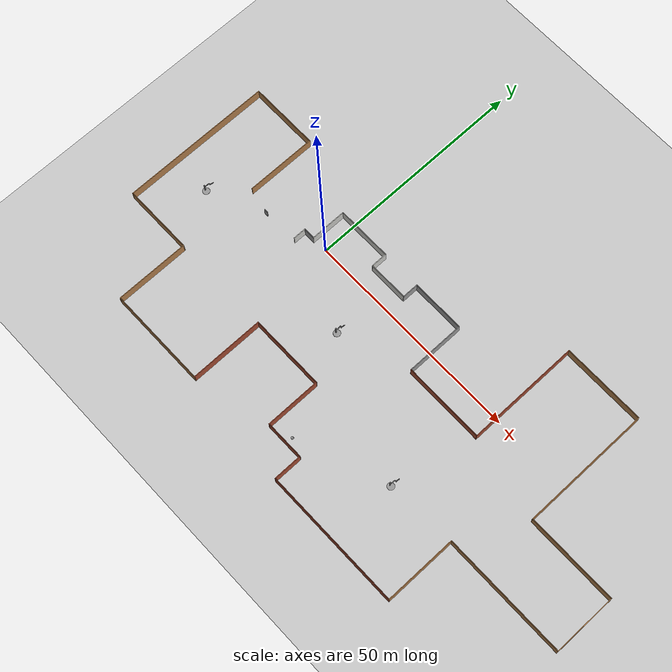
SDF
<sdf version="1.6">
 <world name="default">
  <light name="sun" type="directional">
   <pose>0 0 10 0 -0 0</pose>
   <diffuse>0.8 0.8 0.8 1</diffuse>
   <specular>0.2 0.2 0.2 1</specular>
   <attenuation>
    <range>1000</range>
    <constant>0.9</constant>
    <linear>0.01</linear>
    <quadratic>0.001</quadratic>
   </attenuation>
   <direction>-0.5 0.1 -0.9</direction>
  </light>
  <model name="ground_plane">
   <static>1</static>
   <link name="link">
    <collision name="collision">
     <geometry><plane><normal>0 0 1</normal><size>100 100</size></plane></geometry>
     <surface><friction><ode><mu>100</mu><mu2>50</mu2></ode></friction></surface>
    </collision>
    <visual name="visual">
     <cast_shadows>0</cast_shadows>
     <geometry><plane><normal>0 0 1</normal><size>100 100</size></plane></geometry>
     <material>
      <script><uri>file://media/materials/scripts/gazebo.material</uri><name>Gazebo/Grey</name></script>
     </material>
    </visual>
   </link>
  </model>
  <gravity>0 0 -9.8</gravity>
  <magnetic_field>6e-06 2.3e-05 -4.2e-05</magnetic_field>
  <atmosphere type="adiabatic"/>
  <physics name="default_physics" default="0" type="ode">
   <max_step_size>0.001</max_step_size>
   <real_time_factor>1</real_time_factor>
   <real_time_update_rate>1000</real_time_update_rate>
  </physics>
  <scene><ambient>0.4 0.4 0.4 1</ambient><background>0.7 0.7 0.7 1</background><shadows>1</shadows></scene>
  <spherical_coordinates>
   <surface_model>EARTH_WGS84</surface_model>
   <latitude_deg>0</latitude_deg>
   <longitude_deg>0</longitude_deg>
   <elevation>0</elevation>
   <heading_deg>0</heading_deg>
  </spherical_coordinates>
  <model name="World_Chase"><pose>7.40833 -2.62731 0 0 -0 0</pose><static>1</static></model>
  <model name="Untitled">
   <model name="white_ball">
    <link name="link_0">
     <inertial>
      <mass>1</mass>
      <inertia><ixx>0.1</ixx><ixy>0</ixy><ixz>0</ixz><iyy>0.1</iyy><iyz>0</iyz><izz>0.1</izz></inertia>
     </inertial>
     <visual name="visual">
      <geometry><sphere><radius>0.3</radius></sphere></geometry>
      <material>
       <lighting>1</lighting>
       <script><uri>file://media/materials/scripts/gazebo.material</uri><name>Gazebo/Grey</name></script>
       <shader type="pixel"><normal_map>__default__</normal_map></shader>
       <ambient>1 1 1 1</ambient>
       <diffuse>1 1 1 1</diffuse>
       <specular>1 1 1 1</specular>
       <emissive>1 1 1 1</emissive>
      </material>
     </visual>
     <collision name="collision">
      <geometry><sphere><radius>0.3</radius></sphere></geometry>
      <surface>
       <friction>
        <ode><mu>1</mu><mu2>1</mu2><fdir1>0 0 0</fdir1><slip1>0</slip1><slip2>0</slip2></ode>
        <torsional>
         <coefficient>1</coefficient>
         <patch_radius>0</patch_radius>
         <surface_radius>0</surface_radius>
         <use_patch_radius>1</use_patch_radius>
         <ode><slip>0</slip></ode>
        </torsional>
       </friction>
       <bounce><restitution_coefficient>0</restitution_coefficient><threshold>1e+06</threshold></bounce>
       <contact>
        <collide_without_contact>0</collide_without_contact>
        <collide_without_contact_bitmask>1</collide_without_contact_bitmask>
        <collide_bitmask>1</collide_bitmask>
        <ode>
         <soft_cfm>0</soft_cfm>
         <soft_erp>0.2</soft_erp>
         <kp>1e+13</kp>
         <kd>1</kd>
         <max_vel>0.01</max_vel>
         <min_depth>0</min_depth>
        </ode>
        <bullet>
         <split_impulse>1</split_impulse>
         <split_impulse_penetration_threshold>-0.01</split_impulse_penetration_threshold>
         <soft_cfm>0</soft_cfm>
         <soft_erp>0.2</soft_erp>
         <kp>1e+13</kp>
         <kd>1</kd>
        </bullet>
       </contact>
      </surface>
     </collision>
    </link>
    <static>0</static>
    <pose>4e-06 -2e-06 0 0 -0 0</pose>
   </model>
   <static>0</static>
   <pose>24.7106 -31.4506 0.300003 -0.082894 0.904938 -1.2467</pose>
  </model>
  <model name="Untitled_0">
   <pose>26.5908 -9.87047 0 0 -0 0</pose>
   <link name="Door_0">
    <collision name="Door_0_Collision">
     <geometry><box><size>0.9 0.17 2</size></box></geometry>
     <pose>0 0 1 0 -0 0</pose>
    </collision>
    <visual name="Door_0_Visual">
     <pose>0 0 1 0 -0 0</pose>
     <geometry><box><size>0.9 0.17 2</size></box></geometry>
     <material>
      <script><uri>file://media/materials/scripts/gazebo.material</uri><name>Gazebo/Grey</name></script>
     </material>
    </visual>
    <pose>-40.7616 6.40083 0 0 -0 0</pose>
   </link>
   <link name="Wall_0">
    <collision name="Wall_0_Collision">
     <geometry><box><size>3 0.15 2.5</size></box></geometry>
     <pose>0 0 1.25 0 -0 0</pose>
    </collision>
    <visual name="Wall_0_Visual">
     <pose>0 0 1.25 0 -0 0</pose>
     <geometry><box><size>3 0.15 2.5</size></box></geometry>
     <material>
      <script><uri>file://media/materials/scripts/gazebo.material</uri><name>Gazebo/CeilingTiled</name></script>
      <ambient>1 1 1 1</ambient>
     </material>
     <meta><layer>0</layer></meta>
    </visual>
    <pose>-32.15 7.875 0 0 -0 1.5708</pose>
   </link>
   <link name="Wall_1">
    <collision name="Wall_1_Collision">
     <geometry><box><size>2.75 0.15 2.5</size></box></geometry>
     <pose>0 0 1.25 0 -0 0</pose>
    </collision>
    <visual name="Wall_1_Visual">
     <pose>0 0 1.25 0 -0 0</pose>
     <geometry><box><size>2.75 0.15 2.5</size></box></geometry>
     <material>
      <script><uri>file://media/materials/scripts/gazebo.material</uri><name>Gazebo/Grey</name></script>
      <ambient>1 1 1 1</ambient>
     </material>
     <meta><layer>0</layer></meta>
    </visual>
    <pose>-30.85 9.3 0 0 -0 0</pose>
   </link>
   <link name="Wall_10">
    <collision name="Wall_10_Collision">
     <geometry><box><size>25.5 0.15 2.5</size></box></geometry>
     <pose>0 0 1.25 0 -0 0</pose>
    </collision>
    <visual name="Wall_10_Visual">
     <pose>0 0 1.25 0 -0 0</pose>
     <geometry><box><size>25.5 0.15 2.5</size></box></geometry>
     <material>
      <script><uri>file://media/materials/scripts/gazebo.material</uri><name>Gazebo/Bricks</name></script>
      <ambient>1 1 1 1</ambient>
     </material>
     <meta><layer>0</layer></meta>
    </visual>
    <pose>22.6 16.975 0 0 -0 1.5708</pose>
   </link>
   <link name="Wall_11">
    <collision name="Wall_11_Collision">
     <geometry><box><size>19 0.15 2.5</size></box></geometry>
     <pose>0 0 1.25 0 -0 0</pose>
    </collision>
    <visual name="Wall_11_Visual">
     <pose>0 0 1.25 0 -0 0</pose>
     <geometry><box><size>19 0.15 2.5</size></box></geometry>
     <material>
      <script><uri>file://media/materials/scripts/gazebo.material</uri><name>Gazebo/Wood</name></script>
      <ambient>1 1 1 1</ambient>
     </material>
     <meta><layer>0</layer></meta>
    </visual>
    <pose>32.025 29.65 0 0 -0 0</pose>
   </link>
   <link name="Wall_12">
    <collision name="Wall_12_Collision">
     <geometry><box><size>29.25 0.15 2.5</size></box></geometry>
     <pose>0 0 1.25 0 -0 0</pose>
    </collision>
    <visual name="Wall_12_Visual">
     <pose>0 0 1.25 0 -0 0</pose>
     <geometry><box><size>29.25 0.15 2.5</size></box></geometry>
     <material>
      <script><uri>file://media/materials/scripts/gazebo.material</uri><name>Gazebo/Wood</name></script>
      <ambient>1 1 1 1</ambient>
     </material>
     <meta><layer>0</layer></meta>
    </visual>
    <pose>41.45 15.1 0 0 -0 -1.5708</pose>
   </link>
   <link name="Wall_13">
    <collision name="Wall_13_Collision">
     <geometry><box><size>20.75 0.15 2.5</size></box></geometry>
     <pose>0 0 1.25 0 -0 0</pose>
    </collision>
    <visual name="Wall_13_Visual">
     <pose>0 0 1.25 0 -0 0</pose>
     <geometry><box><size>20.75 0.15 2.5</size></box></geometry>
     <material>
      <script><uri>file://media/materials/scripts/gazebo.material</uri><name>Gazebo/Wood</name></script>
      <ambient>1 1 1 1</ambient>
     </material>
     <meta><layer>0</layer></meta>
    </visual>
    <pose>51.75 0.549999 0 0 -0 0</pose>
   </link>
   <link name="Wall_14">
    <collision name="Wall_14_Collision">
     <geometry><box><size>14.25 0.15 2.5</size></box></geometry>
     <pose>0 0 1.25 0 -0 0</pose>
    </collision>
    <visual name="Wall_14_Visual">
     <pose>0 0 1.25 0 -0 0</pose>
     <geometry><box><size>14.25 0.15 2.5</size></box></geometry>
     <material>
      <script><uri>file://media/materials/scripts/gazebo.material</uri><name>Gazebo/Wood</name></script>
      <ambient>1 1 1 1</ambient>
     </material>
     <meta><layer>0</layer></meta>
    </visual>
    <pose>62.05 -6.5 0 0 -0 -1.5708</pose>
   </link>
   <link name="Wall_15">
    <collision name="Wall_15_Collision">
     <geometry><box><size>28.25 0.15 2.5</size></box></geometry>
     <pose>0 0 1.25 0 -0 0</pose>
    </collision>
    <visual name="Wall_15_Visual">
     <pose>0 0 1.25 0 -0 0</pose>
     <geometry><box><size>28.25 0.15 2.5</size></box></geometry>
     <material>
      <script><uri>file://media/materials/scripts/gazebo.material</uri><name>Gazebo/Wood</name></script>
      <ambient>1 1 1 1</ambient>
     </material>
     <meta><layer>0</layer></meta>
    </visual>
    <pose>48 -13.55 0 0 -0 3.14159</pose>
   </link>
   <link name="Wall_16">
    <collision name="Wall_16_Collision">
     <geometry><box><size>16.25 0.15 2.5</size></box></geometry>
     <pose>0 0 1.25 0 -0 0</pose>
    </collision>
    <visual name="Wall_16_Visual">
     <pose>0 0 1.25 0 -0 0</pose>
     <geometry><box><size>16.25 0.15 2.5</size></box></geometry>
     <material>
      <script><uri>file://media/materials/scripts/gazebo.material</uri><name>Gazebo/Wood</name></script>
      <ambient>1 1 1 1</ambient>
     </material>
     <meta><layer>0</layer></meta>
    </visual>
    <pose>33.95 -21.6 0 0 -0 -1.5708</pose>
   </link>
   <link name="Wall_17">
    <collision name="Wall_17_Collision">
     <geometry><box><size>31.75 0.15 2.5</size></box></geometry>
     <pose>0 0 1.25 0 -0 0</pose>
    </collision>
    <visual name="Wall_17_Visual">
     <pose>0 0 1.25 0 -0 0</pose>
     <geometry><box><size>31.75 0.15 2.5</size></box></geometry>
     <material>
      <script><uri>file://media/materials/scripts/gazebo.material</uri><name>Gazebo/Bricks</name></script>
      <ambient>1 1 1 1</ambient>
     </material>
     <meta><layer>0</layer></meta>
    </visual>
    <pose>18.15 -29.65 0 0 -0 3.14159</pose>
   </link>
   <link name="Wall_18">
    <collision name="Wall_18_Collision">
     <geometry><box><size>6.5 0.15 2.5</size></box></geometry>
     <pose>0 0 1.25 0 -0 0</pose>
    </collision>
    <visual name="Wall_18_Visual">
     <pose>0 0 1.25 0 -0 0</pose>
     <geometry><box><size>6.5 0.15 2.5</size></box></geometry>
     <material>
      <script><uri>file://media/materials/scripts/gazebo.material</uri><name>Gazebo/Bricks</name></script>
      <ambient>1 1 1 1</ambient>
     </material>
     <meta><layer>0</layer></meta>
    </visual>
    <pose>2.35 -26.475 0 0 -0 1.5708</pose>
   </link>
   <link name="Wall_19">
    <collision name="Wall_19_Collision">
     <geometry><box><size>9 0.15 2.5</size></box></geometry>
     <pose>0 0 1.25 0 -0 0</pose>
    </collision>
    <visual name="Wall_19_Visual">
     <pose>0 0 1.25 0 -0 0</pose>
     <geometry><box><size>9 0.15 2.5</size></box></geometry>
     <material>
      <script><uri>file://media/materials/scripts/gazebo.material</uri><name>Gazebo/Bricks</name></script>
      <ambient>1 1 1 1</ambient>
     </material>
     <meta><layer>0</layer></meta>
    </visual>
    <pose>-2.075 -23.3 0 0 -0 3.14159</pose>
   </link>
   <link name="Wall_2">
    <collision name="Wall_2_Collision">
     <geometry><box><size>8.25 0.15 2.5</size></box></geometry>
     <pose>0 0 1.25 0 -0 0</pose>
    </collision>
    <visual name="Wall_2_Visual">
     <pose>0 0 1.25 0 -0 0</pose>
     <geometry><box><size>8.25 0.15 2.5</size></box></geometry>
     <material>
      <script><uri>file://media/materials/scripts/gazebo.material</uri><name>Gazebo/CeilingTiled</name></script>
      <ambient>1 1 1 1</ambient>
     </material>
     <meta><layer>0</layer></meta>
    </visual>
    <pose>-29.55 13.35 0 0 -0 1.5708</pose>
   </link>
   <link name="Wall_20">
    <collision name="Wall_20_Collision">
     <geometry><box><size>12.5 0.15 2.5</size></box></geometry>
     <pose>0 0 1.25 0 -0 0</pose>
    </collision>
    <visual name="Wall_20_Visual">
     <pose>0 0 1.25 0 -0 0</pose>
     <geometry><box><size>12.5 0.15 2.5</size></box></geometry>
     <material>
      <script><uri>file://media/materials/scripts/gazebo.material</uri><name>Gazebo/Bricks</name></script>
      <ambient>1 1 1 1</ambient>
     </material>
     <meta><layer>0</layer></meta>
    </visual>
    <pose>-6.5 -17.125 0 0 -0 1.5708</pose>
   </link>
   <link name="Wall_21">
    <collision name="Wall_21_Collision">
     <geometry><box><size>17.25 0.15 2.5</size></box></geometry>
     <pose>0 0 1.25 0 -0 0</pose>
    </collision>
    <visual name="Wall_21_Visual">
     <pose>0 0 1.25 0 -0 0</pose>
     <geometry><box><size>17.25 0.15 2.5</size></box></geometry>
     <material>
      <script><uri>file://media/materials/scripts/gazebo.material</uri><name>Gazebo/Bricks</name></script>
      <ambient>1 1 1 1</ambient>
     </material>
     <meta><layer>0</layer></meta>
    </visual>
    <pose>-15.05 -10.95 0 0 -0 3.14159</pose>
   </link>
   <link name="Wall_22">
    <collision name="Wall_22_Collision">
     <geometry><box><size>16.75 0.15 2.5</size></box></geometry>
     <pose>0 0 1.25 0 -0 0</pose>
    </collision>
    <visual name="Wall_22_Visual">
     <pose>0 0 1.25 0 -0 0</pose>
     <geometry><box><size>16.75 0.15 2.5</size></box></geometry>
     <material>
      <script><uri>file://media/materials/scripts/gazebo.material</uri><name>Gazebo/Bricks</name></script>
      <ambient>1 1 1 1</ambient>
     </material>
     <meta><layer>0</layer></meta>
    </visual>
    <pose>-23.6 -19.25 0 0 -0 -1.5708</pose>
   </link>
   <link name="Wall_23">
    <collision name="Wall_23_Collision">
     <geometry><box><size>22.75 0.15 2.5</size></box></geometry>
     <pose>0 0 1.25 0 -0 0</pose>
    </collision>
    <visual name="Wall_23_Visual">
     <pose>0 0 1.25 0 -0 0</pose>
     <geometry><box><size>22.75 0.15 2.5</size></box></geometry>
     <material>
      <script><uri>file://media/materials/scripts/gazebo.material</uri><name>Gazebo/Wood</name></script>
      <ambient>1 1 1 1</ambient>
     </material>
     <meta><layer>0</layer></meta>
    </visual>
    <pose>-34.9 -27.55 0 0 -0 3.14159</pose>
   </link>
   <link name="Wall_24">
    <collision name="Wall_24_Collision">
     <geometry><box><size>16.75 0.15 2.5</size></box></geometry>
     <pose>0 0 1.25 0 -0 0</pose>
    </collision>
    <visual name="Wall_24_Visual">
     <pose>0 0 1.25 0 -0 0</pose>
     <geometry><box><size>16.75 0.15 2.5</size></box></geometry>
     <material>
      <script><uri>file://media/materials/scripts/gazebo.material</uri><name>Gazebo/Wood</name></script>
      <ambient>1 1 1 1</ambient>
     </material>
     <meta><layer>0</layer></meta>
    </visual>
    <pose>-46.2 -19.25 0 0 -0 1.5708</pose>
   </link>
   <link name="Wall_25">
    <collision name="Wall_25_Collision">
     <geometry><box><size>16 0.15 2.5</size></box></geometry>
     <pose>0 0 1.25 0 -0 0</pose>
    </collision>
    <visual name="Wall_25_Visual">
     <pose>0 0 1.25 0 -0 0</pose>
     <geometry><box><size>16 0.15 2.5</size></box></geometry>
     <material>
      <script><uri>file://media/materials/scripts/gazebo.material</uri><name>Gazebo/Wood</name></script>
      <ambient>1 1 1 1</ambient>
     </material>
     <meta><layer>0</layer></meta>
    </visual>
    <pose>-54.125 -10.95 0 0 -0 3.14159</pose>
   </link>
   <link name="Wall_26">
    <collision name="Wall_26_Collision">
     <geometry><box><size>34.5 0.15 2.5</size></box></geometry>
     <pose>0 0 1.25 0 -0 0</pose>
    </collision>
    <visual name="Wall_26_Visual">
     <pose>0 0 1.25 0 -0 0</pose>
     <geometry><box><size>34.5 0.15 2.5</size></box></geometry>
     <material>
      <script><uri>file://media/materials/scripts/gazebo.material</uri><name>Gazebo/Wood</name></script>
      <ambient>1 1 1 1</ambient>
     </material>
     <meta><layer>0</layer></meta>
    </visual>
    <pose>-62.05 6.225 0 0 -0 1.5708</pose>
   </link>
   <link name="Wall_27">
    <collision name="Wall_27_Collision">
     <geometry><box><size>16 0.15 2.5</size></box></geometry>
     <pose>0 0 1.25 0 -0 0</pose>
    </collision>
    <visual name="Wall_27_Visual">
     <pose>0 0 1.25 0 -0 0</pose>
     <geometry><box><size>16 0.15 2.5</size></box></geometry>
     <material>
      <script><uri>file://media/materials/scripts/gazebo.material</uri><name>Gazebo/Wood</name></script>
      <ambient>1 1 1 1</ambient>
     </material>
     <meta><layer>0</layer></meta>
    </visual>
    <pose>-54.125 23.4 0 0 -0 0</pose>
   </link>
   <link name="Wall_28">
    <collision name="Wall_28_Collision">
     <geometry><box><size>16 0.15 2.5</size></box></geometry>
     <pose>0 0 1.25 0 -0 0</pose>
    </collision>
    <visual name="Wall_28_Visual">
     <pose>0 0 1.25 0 -0 0</pose>
     <geometry><box><size>16 0.15 2.5</size></box></geometry>
     <material>
      <script><uri>file://media/materials/scripts/gazebo.material</uri><name>Gazebo/Wood</name></script>
      <ambient>1 1 1 1</ambient>
     </material>
     <meta><layer>0</layer></meta>
    </visual>
    <pose>-46.2 15.475 0 0 -0 -1.5708</pose>
   </link>
   <link name="Wall_3">
    <collision name="Wall_3_Collision">
     <geometry><box><size>12.75 0.15 2.5</size></box></geometry>
     <pose>0 0 1.25 0 -0 0</pose>
    </collision>
    <visual name="Wall_3_Visual">
     <pose>0 0 1.25 0 -0 0</pose>
     <geometry><box><size>12.75 0.15 2.5</size></box></geometry>
     <material>
      <script><uri>file://media/materials/scripts/gazebo.material</uri><name>Gazebo/CeilingTiled</name></script>
      <ambient>1 1 1 1</ambient>
     </material>
     <meta><layer>0</layer></meta>
    </visual>
    <pose>-23.25 17.4 0 0 -0 0</pose>
   </link>
   <link name="Wall_4">
    <collision name="Wall_4_Collision">
     <geometry><box><size>3.75 0.15 2.5</size></box></geometry>
     <pose>0 0 1.25 0 -0 0</pose>
    </collision>
    <visual name="Wall_4_Visual">
     <pose>0 0 1.25 0 -0 0</pose>
     <geometry><box><size>3.75 0.15 2.5</size></box></geometry>
     <material>
      <script><uri>file://media/materials/scripts/gazebo.material</uri><name>Gazebo/CeilingTiled</name></script>
      <ambient>1 1 1 1</ambient>
     </material>
     <meta><layer>0</layer></meta>
    </visual>
    <pose>-16.95 15.6 0 0 -0 -1.5708</pose>
   </link>
   <link name="Wall_5">
    <collision name="Wall_5_Collision">
     <geometry><box><size>9.25 0.15 2.5</size></box></geometry>
     <pose>0 0 1.25 0 -0 0</pose>
    </collision>
    <visual name="Wall_5_Visual">
     <pose>0 0 1.25 0 -0 0</pose>
     <geometry><box><size>9.25 0.15 2.5</size></box></geometry>
     <material>
      <script><uri>file://media/materials/scripts/gazebo.material</uri><name>Gazebo/CeilingTiled</name></script>
      <ambient>1 1 1 1</ambient>
     </material>
     <meta><layer>0</layer></meta>
    </visual>
    <pose>-12.4 13.8 0 0 -0 0</pose>
   </link>
   <link name="Wall_6">
    <collision name="Wall_6_Collision">
     <geometry><box><size>3.75 0.15 2.5</size></box></geometry>
     <pose>0 0 1.25 0 -0 0</pose>
    </collision>
    <visual name="Wall_6_Visual">
     <pose>0 0 1.25 0 -0 0</pose>
     <geometry><box><size>3.75 0.15 2.5</size></box></geometry>
     <material>
      <script><uri>file://media/materials/scripts/gazebo.material</uri><name>Gazebo/Grey</name></script>
      <ambient>1 1 1 1</ambient>
     </material>
     <meta><layer>0</layer></meta>
    </visual>
    <pose>-7.85 15.6 0 0 -0 1.5708</pose>
   </link>
   <link name="Wall_7">
    <collision name="Wall_7_Collision">
     <geometry><box><size>12.25 0.15 2.5</size></box></geometry>
     <pose>0 0 1.25 0 -0 0</pose>
    </collision>
    <visual name="Wall_7_Visual">
     <pose>0 0 1.25 0 -0 0</pose>
     <geometry><box><size>12.25 0.15 2.5</size></box></geometry>
     <material>
      <script><uri>file://media/materials/scripts/gazebo.material</uri><name>Gazebo/Grey</name></script>
      <ambient>1 1 1 1</ambient>
     </material>
     <meta><layer>0</layer></meta>
    </visual>
    <pose>-1.8 17.4 0 0 -0 0</pose>
   </link>
   <link name="Wall_8">
    <collision name="Wall_8_Collision">
     <geometry><box><size>13.25 0.15 2.5</size></box></geometry>
     <pose>0 0 1.25 0 -0 0</pose>
    </collision>
    <visual name="Wall_8_Visual">
     <pose>0 0 1.25 0 -0 0</pose>
     <geometry><box><size>13.25 0.15 2.5</size></box></geometry>
     <material>
      <script><uri>file://media/materials/scripts/gazebo.material</uri><name>Gazebo/Grey</name></script>
      <ambient>1 1 1 1</ambient>
     </material>
     <meta><layer>0</layer></meta>
    </visual>
    <pose>4.25 10.85 0 0 -0 -1.5708</pose>
   </link>
   <link name="Wall_9">
    <collision name="Wall_9_Collision">
     <geometry><box><size>18.5 0.15 2.5</size></box></geometry>
     <pose>0 0 1.25 0 -0 0</pose>
    </collision>
    <visual name="Wall_9_Visual">
     <pose>0 0 1.25 0 -0 0</pose>
     <geometry><box><size>18.5 0.15 2.5</size></box></geometry>
     <material>
      <script><uri>file://media/materials/scripts/gazebo.material</uri><name>Gazebo/Bricks</name></script>
      <ambient>1 1 1 1</ambient>
     </material>
     <meta><layer>0</layer></meta>
    </visual>
    <pose>13.425 4.3 0 0 -0 0</pose>
   </link>
   <static>1</static>
  </model>
  <model name="double_pendulum_with_base">
   <link name="base">
    <inertial>
     <mass>100</mass>
     <inertia><ixx>1</ixx><ixy>0</ixy><ixz>0</ixz><iyy>1</iyy><iyz>0</iyz><izz>1</izz></inertia>
    </inertial>
    <visual name="vis_plate_on_ground">
     <pose>0 0 0.01 0 -0 0</pose>
     <geometry><cylinder><radius>0.8</radius><length>0.02</length></cylinder></geometry>
     <material>
      <script><uri>file://media/materials/scripts/gazebo.material</uri><name>Gazebo/Grey</name></script>
     </material>
    </visual>
    <visual name="vis_pole">
     <pose>-0.275 0 1.1 0 -0 0</pose>
     <geometry><box><size>0.2 0.2 2.2</size></box></geometry>
     <material>
      <script><uri>file://media/materials/scripts/gazebo.material</uri><name>Gazebo/Grey</name></script>
     </material>
    </visual>
    <collision name="col_plate_on_ground">
     <pose>0 0 0.01 0 -0 0</pose>
     <geometry><cylinder><radius>0.8</radius><length>0.02</length></cylinder></geometry>
    </collision>
    <collision name="col_pole">
     <pose>-0.275 0 1.1 0 -0 0</pose>
     <geometry><box><size>0.2 0.2 2.2</size></box></geometry>
    </collision>
   </link>
   <link name="upper_link">
    <pose>0 0 2.1 -1.5708 0 0</pose>
    <inertial>
     <pose>0 0 0.5 0 -0 0</pose>
     <inertia><ixx>1</ixx><ixy>0</ixy><ixz>0</ixz><iyy>1</iyy><iyz>0</iyz><izz>1</izz></inertia>
     <mass>1</mass>
    </inertial>
    <visual name="vis_upper_joint">
     <pose>-0.05 0 0 3.14159 1.57079 3.14159</pose>
     <geometry><cylinder><radius>0.1</radius><length>0.3</length></cylinder></geometry>
     <material>
      <script><uri>file://media/materials/scripts/gazebo.material</uri><name>Gazebo/Grey</name></script>
     </material>
    </visual>
    <visual name="vis_lower_joint">
     <pose>0 0 1 3.14159 1.57079 3.14159</pose>
     <geometry><cylinder><radius>0.1</radius><length>0.2</length></cylinder></geometry>
     <material>
      <script><uri>file://media/materials/scripts/gazebo.material</uri><name>Gazebo/Grey</name></script>
     </material>
    </visual>
    <visual name="vis_cylinder">
     <pose>0 0 0.5 0 -0 0</pose>
     <geometry><cylinder><radius>0.1</radius><length>0.9</length></cylinder></geometry>
     <material>
      <script><uri>file://media/materials/scripts/gazebo.material</uri><name>Gazebo/Grey</name></script>
     </material>
    </visual>
    <collision name="col_upper_joint">
     <pose>-0.05 0 0 3.14159 1.57079 3.14159</pose>
     <geometry><cylinder><radius>0.1</radius><length>0.3</length></cylinder></geometry>
    </collision>
    <collision name="col_lower_joint">
     <pose>0 0 1 3.14159 1.57079 3.14159</pose>
     <geometry><cylinder><radius>0.1</radius><length>0.2</length></cylinder></geometry>
    </collision>
    <collision name="col_cylinder">
     <pose>0 0 0.5 0 -0 0</pose>
     <geometry><cylinder><radius>0.1</radius><length>0.9</length></cylinder></geometry>
    </collision>
   </link>
   <link name="lower_link">
    <pose>0.25 1 2.1 -2 0 0</pose>
    <inertial>
     <pose>0 0 0.5 0 -0 0</pose>
     <inertia><ixx>1</ixx><ixy>0</ixy><ixz>0</ixz><iyy>1</iyy><iyz>0</iyz><izz>1</izz></inertia>
     <mass>1</mass>
    </inertial>
    <visual name="vis_lower_joint">
     <pose>0 0 0 3.14159 1.57079 3.14159</pose>
     <geometry><cylinder><radius>0.08</radius><length>0.3</length></cylinder></geometry>
     <material>
      <script><uri>file://media/materials/scripts/gazebo.material</uri><name>Gazebo/Grey</name></script>
     </material>
    </visual>
    <visual name="vis_cylinder">
     <pose>0 0 0.5 0 -0 0</pose>
     <geometry><cylinder><radius>0.1</radius><length>0.9</length></cylinder></geometry>
     <material>
      <script><uri>file://media/materials/scripts/gazebo.material</uri><name>Gazebo/Grey</name></script>
     </material>
    </visual>
    <collision name="col_lower_joint">
     <pose>0 0 0 3.14159 1.57079 3.14159</pose>
     <geometry><cylinder><radius>0.08</radius><length>0.3</length></cylinder></geometry>
    </collision>
    <collision name="col_cylinder">
     <pose>0 0 0.5 0 -0 0</pose>
     <geometry><cylinder><radius>0.1</radius><length>0.9</length></cylinder></geometry>
    </collision>
   </link>
   <joint name="upper_joint" type="revolute">
    <parent>base</parent>
    <child>upper_link</child>
    <axis>
     <xyz>1 0 0</xyz>
     <use_parent_model_frame>0</use_parent_model_frame>
     <limit><lower>-1e+16</lower><upper>1e+16</upper></limit>
     <dynamics><spring_reference>0</spring_reference><spring_stiffness>0</spring_stiffness></dynamics>
    </axis>
   </joint>
   <joint name="lower_joint" type="revolute">
    <parent>upper_link</parent>
    <child>lower_link</child>
    <axis>
     <xyz>1 0 0</xyz>
     <use_parent_model_frame>0</use_parent_model_frame>
     <limit><lower>-1e+16</lower><upper>1e+16</upper></limit>
     <dynamics><spring_reference>0</spring_reference><spring_stiffness>0</spring_stiffness></dynamics>
    </axis>
   </joint>
   <pose>-26.663 -8.97745 -9e-06 -1e-06 -2e-06 -0.02214</pose>
  </model>
  <model name="double_pendulum_with_base_0">
   <link name="base">
    <inertial>
     <mass>100</mass>
     <inertia><ixx>1</ixx><ixy>0</ixy><ixz>0</ixz><iyy>1</iyy><iyz>0</iyz><izz>1</izz></inertia>
    </inertial>
    <visual name="vis_plate_on_ground">
     <pose>0 0 0.01 0 -0 0</pose>
     <geometry><cylinder><radius>0.8</radius><length>0.02</length></cylinder></geometry>
     <material>
      <script><uri>file://media/materials/scripts/gazebo.material</uri><name>Gazebo/Grey</name></script>
     </material>
    </visual>
    <visual name="vis_pole">
     <pose>-0.275 0 1.1 0 -0 0</pose>
     <geometry><box><size>0.2 0.2 2.2</size></box></geometry>
     <material>
      <script><uri>file://media/materials/scripts/gazebo.material</uri><name>Gazebo/Grey</name></script>
     </material>
    </visual>
    <collision name="col_plate_on_ground">
     <pose>0 0 0.01 0 -0 0</pose>
     <geometry><cylinder><radius>0.8</radius><length>0.02</length></cylinder></geometry>
    </collision>
    <collision name="col_pole">
     <pose>-0.275 0 1.1 0 -0 0</pose>
     <geometry><box><size>0.2 0.2 2.2</size></box></geometry>
    </collision>
   </link>
   <link name="upper_link">
    <pose>0 0 2.1 -1.5708 0 0</pose>
    <inertial>
     <pose>0 0 0.5 0 -0 0</pose>
     <inertia><ixx>1</ixx><ixy>0</ixy><ixz>0</ixz><iyy>1</iyy><iyz>0</iyz><izz>1</izz></inertia>
     <mass>1</mass>
    </inertial>
    <visual name="vis_upper_joint">
     <pose>-0.05 0 0 3.14159 1.57079 3.14159</pose>
     <geometry><cylinder><radius>0.1</radius><length>0.3</length></cylinder></geometry>
     <material>
      <script><uri>file://media/materials/scripts/gazebo.material</uri><name>Gazebo/Grey</name></script>
     </material>
    </visual>
    <visual name="vis_lower_joint">
     <pose>0 0 1 3.14159 1.57079 3.14159</pose>
     <geometry><cylinder><radius>0.1</radius><length>0.2</length></cylinder></geometry>
     <material>
      <script><uri>file://media/materials/scripts/gazebo.material</uri><name>Gazebo/Grey</name></script>
     </material>
    </visual>
    <visual name="vis_cylinder">
     <pose>0 0 0.5 0 -0 0</pose>
     <geometry><cylinder><radius>0.1</radius><length>0.9</length></cylinder></geometry>
     <material>
      <script><uri>file://media/materials/scripts/gazebo.material</uri><name>Gazebo/Grey</name></script>
     </material>
    </visual>
    <collision name="col_upper_joint">
     <pose>-0.05 0 0 3.14159 1.57079 3.14159</pose>
     <geometry><cylinder><radius>0.1</radius><length>0.3</length></cylinder></geometry>
    </collision>
    <collision name="col_lower_joint">
     <pose>0 0 1 3.14159 1.57079 3.14159</pose>
     <geometry><cylinder><radius>0.1</radius><length>0.2</length></cylinder></geometry>
    </collision>
    <collision name="col_cylinder">
     <pose>0 0 0.5 0 -0 0</pose>
     <geometry><cylinder><radius>0.1</radius><length>0.9</length></cylinder></geometry>
    </collision>
   </link>
   <link name="lower_link">
    <pose>0.25 1 2.1 -2 0 0</pose>
    <inertial>
     <pose>0 0 0.5 0 -0 0</pose>
     <inertia><ixx>1</ixx><ixy>0</ixy><ixz>0</ixz><iyy>1</iyy><iyz>0</iyz><izz>1</izz></inertia>
     <mass>1</mass>
    </inertial>
    <visual name="vis_lower_joint">
     <pose>0 0 0 3.14159 1.57079 3.14159</pose>
     <geometry><cylinder><radius>0.08</radius><length>0.3</length></cylinder></geometry>
     <material>
      <script><uri>file://media/materials/scripts/gazebo.material</uri><name>Gazebo/Grey</name></script>
     </material>
    </visual>
    <visual name="vis_cylinder">
     <pose>0 0 0.5 0 -0 0</pose>
     <geometry><cylinder><radius>0.1</radius><length>0.9</length></cylinder></geometry>
     <material>
      <script><uri>file://media/materials/scripts/gazebo.material</uri><name>Gazebo/Grey</name></script>
     </material>
    </visual>
    <collision name="col_lower_joint">
     <pose>0 0 0 3.14159 1.57079 3.14159</pose>
     <geometry><cylinder><radius>0.08</radius><length>0.3</length></cylinder></geometry>
    </collision>
    <collision name="col_cylinder">
     <pose>0 0 0.5 0 -0 0</pose>
     <geometry><cylinder><radius>0.1</radius><length>0.9</length></cylinder></geometry>
    </collision>
   </link>
   <joint name="upper_joint" type="revolute">
    <parent>base</parent>
    <child>upper_link</child>
    <axis>
     <xyz>1 0 0</xyz>
     <use_parent_model_frame>0</use_parent_model_frame>
     <limit><lower>-1e+16</lower><upper>1e+16</upper></limit>
     <dynamics><spring_reference>0</spring_reference><spring_stiffness>0</spring_stiffness></dynamics>
    </axis>
   </joint>
   <joint name="lower_joint" type="revolute">
    <parent>upper_link</parent>
    <child>lower_link</child>
    <axis>
     <xyz>1 0 0</xyz>
     <use_parent_model_frame>0</use_parent_model_frame>
     <limit><lower>-1e+16</lower><upper>1e+16</upper></limit>
     <dynamics><spring_reference>0</spring_reference><spring_stiffness>0</spring_stiffness></dynamics>
    </axis>
   </joint>
   <pose>14.6653 -10.4546 -9e-06 0 -7e-06 -0.014373</pose>
  </model>
  <model name="double_pendulum_with_base_1">
   <link name="base">
    <inertial>
     <mass>100</mass>
     <inertia><ixx>1</ixx><ixy>0</ixy><ixz>0</ixz><iyy>1</iyy><iyz>0</iyz><izz>1</izz></inertia>
    </inertial>
    <visual name="vis_plate_on_ground">
     <pose>0 0 0.01 0 -0 0</pose>
     <geometry><cylinder><radius>0.8</radius><length>0.02</length></cylinder></geometry>
     <material>
      <script><uri>file://media/materials/scripts/gazebo.material</uri><name>Gazebo/Grey</name></script>
     </material>
    </visual>
    <visual name="vis_pole">
     <pose>-0.275 0 1.1 0 -0 0</pose>
     <geometry><box><size>0.2 0.2 2.2</size></box></geometry>
     <material>
      <script><uri>file://media/materials/scripts/gazebo.material</uri><name>Gazebo/Grey</name></script>
     </material>
    </visual>
    <collision name="col_plate_on_ground">
     <pose>0 0 0.01 0 -0 0</pose>
     <geometry><cylinder><radius>0.8</radius><length>0.02</length></cylinder></geometry>
    </collision>
    <collision name="col_pole">
     <pose>-0.275 0 1.1 0 -0 0</pose>
     <geometry><box><size>0.2 0.2 2.2</size></box></geometry>
    </collision>
   </link>
   <link name="upper_link">
    <pose>0 0 2.1 -1.5708 0 0</pose>
    <inertial>
     <pose>0 0 0.5 0 -0 0</pose>
     <inertia><ixx>1</ixx><ixy>0</ixy><ixz>0</ixz><iyy>1</iyy><iyz>0</iyz><izz>1</izz></inertia>
     <mass>1</mass>
    </inertial>
    <visual name="vis_upper_joint">
     <pose>-0.05 0 0 3.14159 1.57079 3.14159</pose>
     <geometry><cylinder><radius>0.1</radius><length>0.3</length></cylinder></geometry>
     <material>
      <script><uri>file://media/materials/scripts/gazebo.material</uri><name>Gazebo/Grey</name></script>
     </material>
    </visual>
    <visual name="vis_lower_joint">
     <pose>0 0 1 3.14159 1.57079 3.14159</pose>
     <geometry><cylinder><radius>0.1</radius><length>0.2</length></cylinder></geometry>
     <material>
      <script><uri>file://media/materials/scripts/gazebo.material</uri><name>Gazebo/Grey</name></script>
     </material>
    </visual>
    <visual name="vis_cylinder">
     <pose>0 0 0.5 0 -0 0</pose>
     <geometry><cylinder><radius>0.1</radius><length>0.9</length></cylinder></geometry>
     <material>
      <script><uri>file://media/materials/scripts/gazebo.material</uri><name>Gazebo/Grey</name></script>
     </material>
    </visual>
    <collision name="col_upper_joint">
     <pose>-0.05 0 0 3.14159 1.57079 3.14159</pose>
     <geometry><cylinder><radius>0.1</radius><length>0.3</length></cylinder></geometry>
    </collision>
    <collision name="col_lower_joint">
     <pose>0 0 1 3.14159 1.57079 3.14159</pose>
     <geometry><cylinder><radius>0.1</radius><length>0.2</length></cylinder></geometry>
    </collision>
    <collision name="col_cylinder">
     <pose>0 0 0.5 0 -0 0</pose>
     <geometry><cylinder><radius>0.1</radius><length>0.9</length></cylinder></geometry>
    </collision>
   </link>
   <link name="lower_link">
    <pose>0.25 1 2.1 -2 0 0</pose>
    <inertial>
     <pose>0 0 0.5 0 -0 0</pose>
     <inertia><ixx>1</ixx><ixy>0</ixy><ixz>0</ixz><iyy>1</iyy><iyz>0</iyz><izz>1</izz></inertia>
     <mass>1</mass>
    </inertial>
    <visual name="vis_lower_joint">
     <pose>0 0 0 3.14159 1.57079 3.14159</pose>
     <geometry><cylinder><radius>0.08</radius><length>0.3</length></cylinder></geometry>
     <material>
      <script><uri>file://media/materials/scripts/gazebo.material</uri><name>Gazebo/Grey</name></script>
     </material>
    </visual>
    <visual name="vis_cylinder">
     <pose>0 0 0.5 0 -0 0</pose>
     <geometry><cylinder><radius>0.1</radius><length>0.9</length></cylinder></geometry>
     <material>
      <script><uri>file://media/materials/scripts/gazebo.material</uri><name>Gazebo/Grey</name></script>
     </material>
    </visual>
    <collision name="col_lower_joint">
     <pose>0 0 0 3.14159 1.57079 3.14159</pose>
     <geometry><cylinder><radius>0.08</radius><length>0.3</length></cylinder></geometry>
    </collision>
    <collision name="col_cylinder">
     <pose>0 0 0.5 0 -0 0</pose>
     <geometry><cylinder><radius>0.1</radius><length>0.9</length></cylinder></geometry>
    </collision>
   </link>
   <joint name="upper_joint" type="revolute">
    <parent>base</parent>
    <child>upper_link</child>
    <axis>
     <xyz>1 0 0</xyz>
     <use_parent_model_frame>0</use_parent_model_frame>
     <limit><lower>-1e+16</lower><upper>1e+16</upper></limit>
     <dynamics><spring_reference>0</spring_reference><spring_stiffness>0</spring_stiffness></dynamics>
    </axis>
   </joint>
   <joint name="lower_joint" type="revolute">
    <parent>upper_link</parent>
    <child>lower_link</child>
    <axis>
     <xyz>1 0 0</xyz>
     <use_parent_model_frame>0</use_parent_model_frame>
     <limit><lower>-1e+16</lower><upper>1e+16</upper></limit>
     <dynamics><spring_reference>0</spring_reference><spring_stiffness>0</spring_stiffness></dynamics>
    </axis>
   </joint>
   <pose>44.705 -24.0746 0 -0 -0 -0.064295</pose>
  </model>
 </world>
</sdf>
